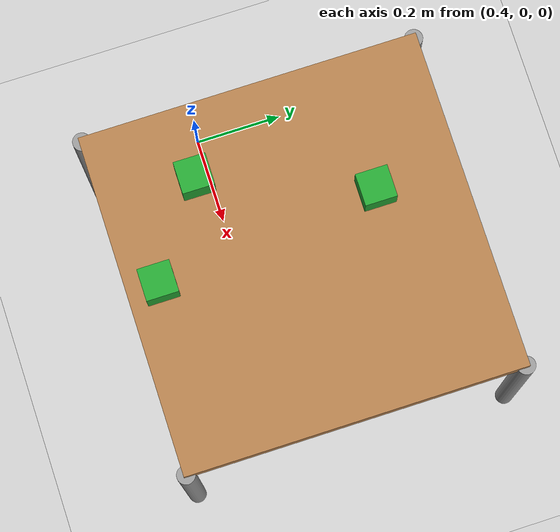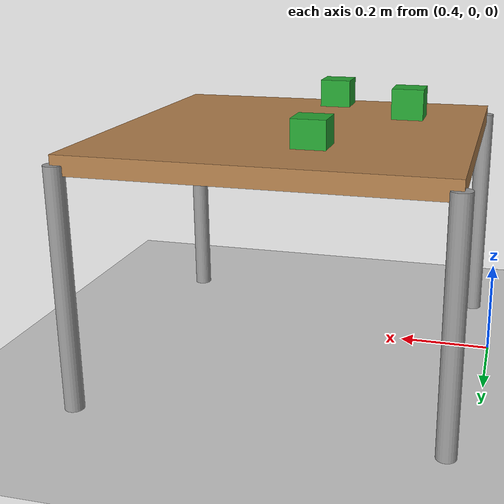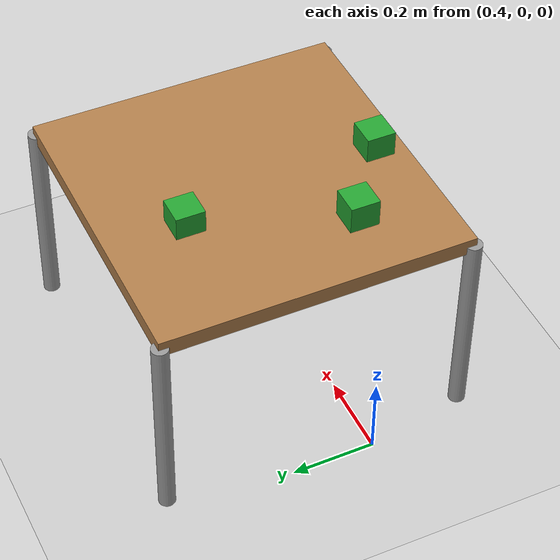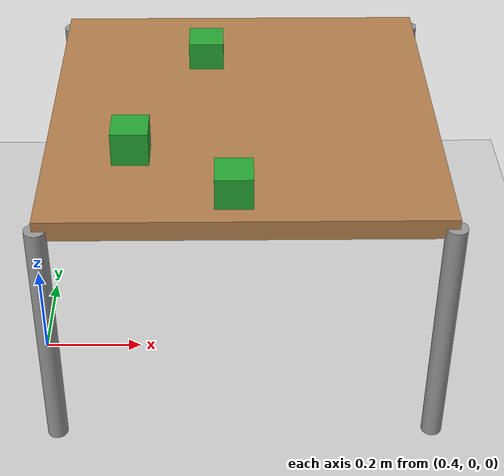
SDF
<sdf version="1.7">
 <world name="default">
  <model name="ground_plane">
   <static>1</static>
   <link name="link">
    <collision name="collision">
     <geometry><plane><normal>0 0 1</normal><size>100 100</size></plane></geometry>
     <surface><friction><ode><mu>100</mu><mu2>50</mu2></ode></friction></surface>
    </collision>
    <visual name="visual">
     <cast_shadows>0</cast_shadows>
     <geometry><plane><normal>0 0 1</normal><size>100 100</size></plane></geometry>
     <material>
      <script><uri>file://media/materials/scripts/gazebo.material</uri><name>Gazebo/Grey</name></script>
     </material>
    </visual>
    <velocity_decay><linear>0</linear><angular>0</angular></velocity_decay>
   </link>
  </model>
  <model name="table">
   <static>1</static>
   <link name="link">
    <collision name="surface">
     <pose>0 0 0.5 0 -0 0</pose>
     <geometry><box><size>0.75 0.75 0.04</size></box></geometry>
    </collision>
    <visual name="visual1">
     <pose>0 0 0.5 0 -0 0</pose>
     <geometry><box><size>0.75 0.75 0.04</size></box></geometry>
     <material>
      <script><uri>file://media/materials/scripts/gazebo.material</uri><name>Gazebo/Wood</name></script>
     </material>
    </visual>
    <collision name="front_left_leg">
     <pose>0.37 0.37 0.25 0 -0 0</pose>
     <geometry><cylinder><radius>0.02</radius><length>0.5</length></cylinder></geometry>
    </collision>
    <visual name="front_left_leg">
     <pose>0.37 0.37 0.25 0 -0 0</pose>
     <geometry><cylinder><radius>0.02</radius><length>0.5</length></cylinder></geometry>
     <material>
      <script><uri>file://media/materials/scripts/gazebo.material</uri><name>Gazebo/Grey</name></script>
     </material>
    </visual>
    <collision name="front_right_leg">
     <pose>0.37 -0.37 0.25 0 -0 0</pose>
     <geometry><cylinder><radius>0.02</radius><length>0.5</length></cylinder></geometry>
    </collision>
    <visual name="front_right_leg">
     <pose>0.37 -0.37 0.25 0 -0 0</pose>
     <geometry><cylinder><radius>0.02</radius><length>0.5</length></cylinder></geometry>
     <material>
      <script><uri>file://media/materials/scripts/gazebo.material</uri><name>Gazebo/Grey</name></script>
     </material>
    </visual>
    <collision name="back_right_leg">
     <pose>-0.37 -0.37 0.25 0 -0 0</pose>
     <geometry><cylinder><radius>0.02</radius><length>0.5</length></cylinder></geometry>
    </collision>
    <visual name="back_right_leg">
     <pose>-0.37 -0.37 0.25 0 -0 0</pose>
     <geometry><cylinder><radius>0.02</radius><length>0.5</length></cylinder></geometry>
     <material>
      <script><uri>file://media/materials/scripts/gazebo.material</uri><name>Gazebo/Grey</name></script>
     </material>
    </visual>
    <collision name="back_left_leg">
     <pose>-0.37 0.37 0.25 0 -0 0</pose>
     <geometry><cylinder><radius>0.02</radius><length>0.5</length></cylinder></geometry>
    </collision>
    <visual name="back_left_leg">
     <pose>-0.37 0.37 0.25 0 -0 0</pose>
     <geometry><cylinder><radius>0.02</radius><length>0.5</length></cylinder></geometry>
     <material>
      <script><uri>file://media/materials/scripts/gazebo.material</uri><name>Gazebo/Grey</name></script>
     </material>
    </visual>
    <velocity_decay><linear>0</linear><angular>0</angular></velocity_decay>
   </link>
   <pose>0.819965 0.122002 0 0 -0 0</pose>
  </model>
  <model name="green_cube_3">
   <link name="link">
    <inertial>
     <mass>0.25</mass>
     <inertia>
      <ixx>4.167e-05</ixx>
      <ixy>0</ixy>
      <ixz>0</ixz>
      <iyy>4.167e-05</iyy>
      <iyz>0</iyz>
      <izz>4.167e-05</izz>
     </inertia>
    </inertial>
    <velocity_decay><linear>0</linear><angular>0</angular></velocity_decay>
    <visual name="visual">
     <geometry><box><size>0.07 0.07 0.07</size></box></geometry>
     <material>
      <script><uri>file://media/materials/scripts/gazebo.material</uri><name>Gazebo/Green</name></script>
      <shader type="pixel"><normal_map>__default__</normal_map></shader>
     </material>
    </visual>
    <collision name="collision">
     <geometry><box><size>0.07 0.07 0.07</size></box></geometry>
     <surface>
      <friction>
       <ode><mu>0.7</mu><mu2>0.7</mu2><fdir1>0 0 0</fdir1><slip1>0</slip1><slip2>0</slip2></ode>
       <torsional>
        <coefficient>1</coefficient>
        <patch_radius>0</patch_radius>
        <surface_radius>0</surface_radius>
        <use_patch_radius>1</use_patch_radius>
        <ode><slip>0</slip></ode>
       </torsional>
      </friction>
      <bounce><restitution_coefficient>0</restitution_coefficient><threshold>1e+06</threshold></bounce>
      <contact>
       <collide_without_contact>0</collide_without_contact>
       <collide_without_contact_bitmask>1</collide_without_contact_bitmask>
       <collide_bitmask>1</collide_bitmask>
       <ode>
        <soft_cfm>0</soft_cfm>
        <soft_erp>0.2</soft_erp>
        <kp>1e+06</kp>
        <kd>100</kd>
        <max_vel>1</max_vel>
        <min_depth>0.0025</min_depth>
       </ode>
       <bullet>
        <split_impulse>1</split_impulse>
        <split_impulse_penetration_threshold>-0.01</split_impulse_penetration_threshold>
        <soft_cfm>0</soft_cfm>
        <soft_erp>0.2</soft_erp>
        <kp>1e+06</kp>
        <kd>100</kd>
       </bullet>
      </contact>
     </surface>
    </collision>
   </link>
   <static>0</static>
   <allow_auto_disable>0</allow_auto_disable>
   <pose>0.608696 -0.044486 0.552499 1e-06 -1.2e-05 -0.004021</pose>
  </model>
  <model name="green_cube_2">
   <link name="link">
    <inertial>
     <mass>0.25</mass>
     <inertia>
      <ixx>4.167e-05</ixx>
      <ixy>0</ixy>
      <ixz>0</ixz>
      <iyy>4.167e-05</iyy>
      <iyz>0</iyz>
      <izz>4.167e-05</izz>
     </inertia>
    </inertial>
    <velocity_decay><linear>0</linear><angular>0</angular></velocity_decay>
    <visual name="visual">
     <geometry><box><size>0.07 0.07 0.07</size></box></geometry>
     <material>
      <script><uri>file://media/materials/scripts/gazebo.material</uri><name>Gazebo/Green</name></script>
      <shader type="pixel"><normal_map>__default__</normal_map></shader>
     </material>
    </visual>
    <collision name="collision">
     <geometry><box><size>0.07 0.07 0.07</size></box></geometry>
     <surface>
      <friction>
       <ode><mu>0.7</mu><mu2>0.7</mu2><fdir1>0 0 0</fdir1><slip1>0</slip1><slip2>0</slip2></ode>
       <torsional>
        <coefficient>1</coefficient>
        <patch_radius>0</patch_radius>
        <surface_radius>0</surface_radius>
        <use_patch_radius>1</use_patch_radius>
        <ode><slip>0</slip></ode>
       </torsional>
      </friction>
      <bounce><restitution_coefficient>0</restitution_coefficient><threshold>1e+06</threshold></bounce>
      <contact>
       <collide_without_contact>0</collide_without_contact>
       <collide_without_contact_bitmask>1</collide_without_contact_bitmask>
       <collide_bitmask>1</collide_bitmask>
       <ode>
        <soft_cfm>0</soft_cfm>
        <soft_erp>0.2</soft_erp>
        <kp>1e+06</kp>
        <kd>100</kd>
        <max_vel>1</max_vel>
        <min_depth>0.0025</min_depth>
       </ode>
       <bullet>
        <split_impulse>1</split_impulse>
        <split_impulse_penetration_threshold>-0.01</split_impulse_penetration_threshold>
        <soft_cfm>0</soft_cfm>
        <soft_erp>0.2</soft_erp>
        <kp>1e+06</kp>
        <kd>100</kd>
       </bullet>
      </contact>
     </surface>
    </collision>
   </link>
   <static>0</static>
   <allow_auto_disable>0</allow_auto_disable>
   <pose>0.799399 -0.182023 0.547499 0.0 0.0 0.0</pose>
  </model>
  <model name="green_cube_1">
   <link name="link">
    <inertial>
     <mass>0.25</mass>
     <inertia>
      <ixx>4.167e-05</ixx>
      <ixy>0</ixy>
      <ixz>0</ixz>
      <iyy>4.167e-05</iyy>
      <iyz>0</iyz>
      <izz>4.167e-05</izz>
     </inertia>
    </inertial>
    <velocity_decay><linear>0</linear><angular>0</angular></velocity_decay>
    <visual name="visual">
     <geometry><box><size>0.07 0.07 0.07</size></box></geometry>
     <material>
      <script><uri>file://media/materials/scripts/gazebo.material</uri><name>Gazebo/Green</name></script>
      <shader type="pixel"><normal_map>__default__</normal_map></shader>
     </material>
    </visual>
    <collision name="collision">
     <geometry><box><size>0.07 0.07 0.07</size></box></geometry>
     <surface>
      <friction>
       <ode><mu>0.7</mu><mu2>0.7</mu2><fdir1>0 0 0</fdir1><slip1>0</slip1><slip2>0</slip2></ode>
       <torsional>
        <coefficient>1</coefficient>
        <patch_radius>0</patch_radius>
        <surface_radius>0</surface_radius>
        <use_patch_radius>1</use_patch_radius>
        <ode><slip>0</slip></ode>
       </torsional>
      </friction>
      <bounce><restitution_coefficient>0</restitution_coefficient><threshold>1e+06</threshold></bounce>
      <contact>
       <collide_without_contact>0</collide_without_contact>
       <collide_without_contact_bitmask>1</collide_without_contact_bitmask>
       <collide_bitmask>1</collide_bitmask>
       <ode>
        <soft_cfm>0</soft_cfm>
        <soft_erp>0.2</soft_erp>
        <kp>1e+06</kp>
        <kd>100</kd>
        <max_vel>1</max_vel>
        <min_depth>0.0025</min_depth>
       </ode>
       <bullet>
        <split_impulse>1</split_impulse>
        <split_impulse_penetration_threshold>-0.01</split_impulse_penetration_threshold>
        <soft_cfm>0</soft_cfm>
        <soft_erp>0.2</soft_erp>
        <kp>1e+06</kp>
        <kd>100</kd>
       </bullet>
      </contact>
     </surface>
    </collision>
   </link>
   <static>0</static>
   <allow_auto_disable>0</allow_auto_disable>
   <pose>0.746387 0.307586 0.542499 0.0 0.0 0.0</pose>
  </model>
 </world>
</sdf>
